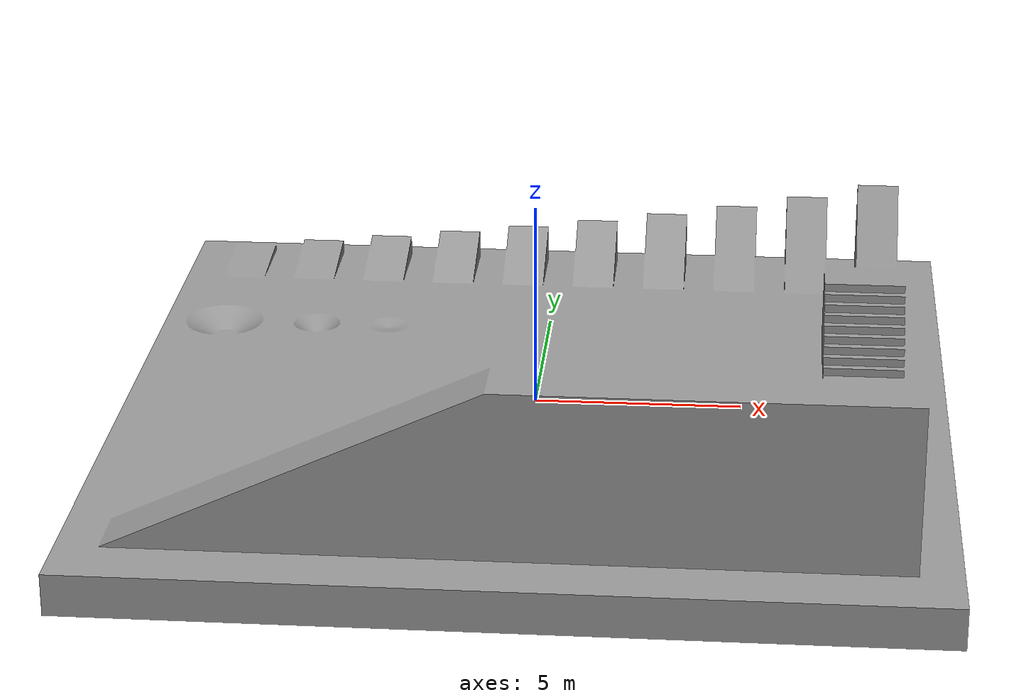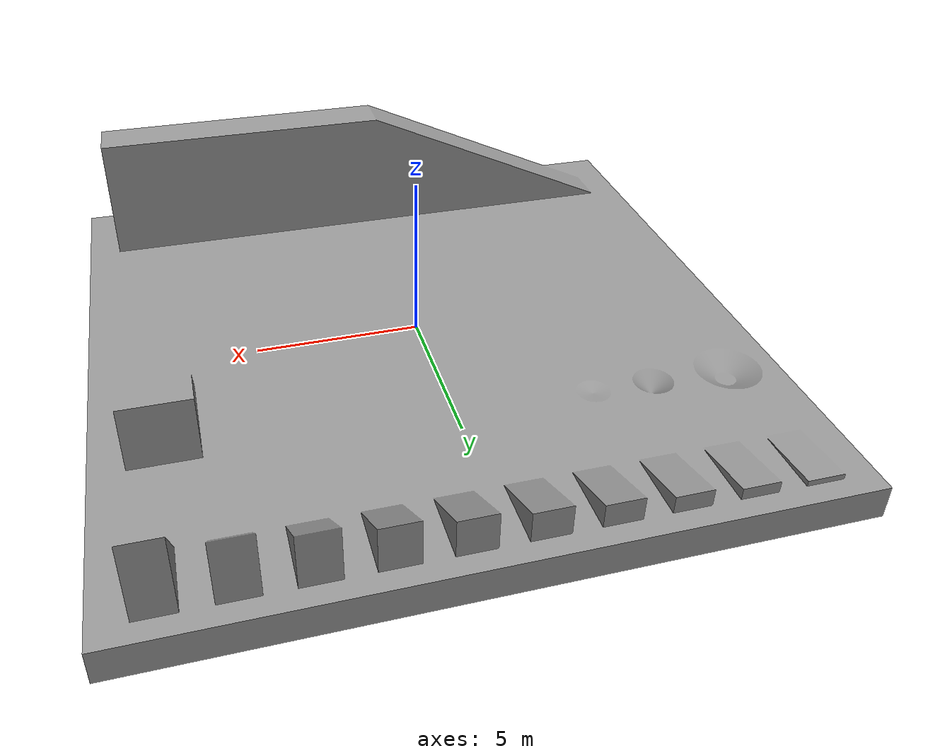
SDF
<?xml version="1.0" ?>
<sdf version="1.9">
  <world name="test_world">

    <plugin filename="gz-sim-physics-system" name="gz::sim::systems::Physics"></plugin>
    <plugin filename="gz-sim-user-commands-system" name="gz::sim::systems::UserCommands"></plugin>
    <plugin filename="gz-sim-scene-broadcaster-system" name="gz::sim::systems::SceneBroadcaster"></plugin>
    <plugin filename="gz-sim-sensors-system" name="gz::sim::systems::Sensors">
      <render_engine>ogre2</render_engine>
    </plugin>

    <physics name="default_physics" type="ode">
      <max_step_size>0.003</max_step_size>
      <real_time_factor>1.0</real_time_factor>
      <real_time_update_rate>1000</real_time_update_rate>
      <gravity>0 0 -9.8</gravity>
    </physics>

    <spherical_coordinates>
      <surface_model>EARTH_WGS84</surface_model>
      <latitude_deg>39.512152</latitude_deg>
      <longitude_deg>22.426669</longitude_deg>
      <elevation>344</elevation>
      <heading_deg>0</heading_deg>
    </spherical_coordinates>

    <light type="directional" name="sun">
      <cast_shadows>true</cast_shadows>
      <pose>0 0 10 0 0 0</pose>
      <diffuse>1.0 1.0 1.0 1</diffuse>
      <specular>0.2 0.2 0.2 1</specular>
      <attenuation>
        <range>1000</range>
        <constant>0.9</constant>
        <linear>0.01</linear>
        <quadratic>0.001</quadratic>
      </attenuation>
      <direction>-0.5 0.5 -1.0</direction>
    </light>

    <scene>
      <ambient>1 1 1 1</ambient>
      <background>0.3 0.7 0.9 1</background>
      <shadows>1</shadows>
    </scene>

    <!-- Custom STL terrain: 100 x 100 m footprint, ground surface at z ~ 0 -->
    <model name='terrain'>
      <static>true</static>
      <pose>0 0 0 0 0 0</pose>
      <link name='link'>
        <collision name='collision'>
          <geometry>
            <mesh>
              <uri>model://test_world/Test_world.stl</uri>
              <scale>0.2 0.2 0.2</scale>
            </mesh>
          </geometry>
        </collision>
        <visual name='visual'>
          <geometry>
            <mesh>
              <uri>model://test_world/Test_world.stl</uri>
              <scale>0.2 0.2 0.2</scale>
            </mesh>
          </geometry>
          <material>
            <ambient>0.4 0.4 0.4 1</ambient>
            <diffuse>0.6 0.6 0.6 1</diffuse>
            <specular>0.1 0.1 0.1 1</specular>
          </material>
        </visual>
      </link>
    </model>

  </world>
</sdf>
